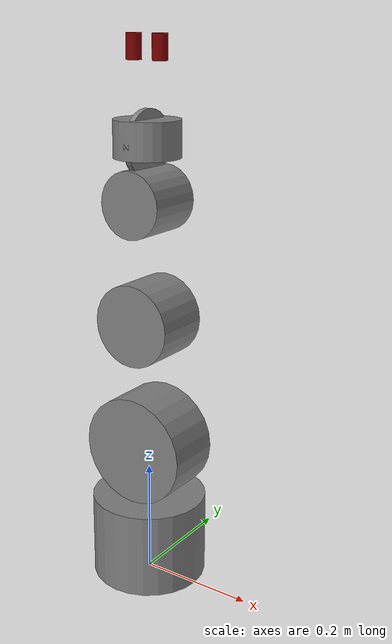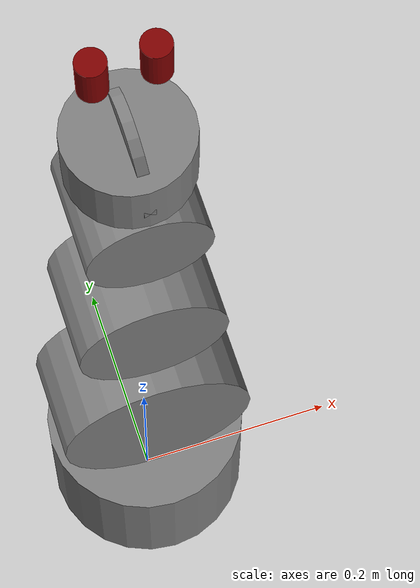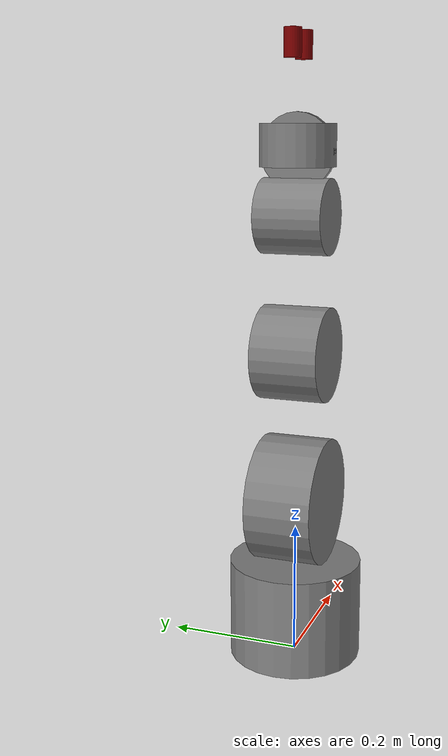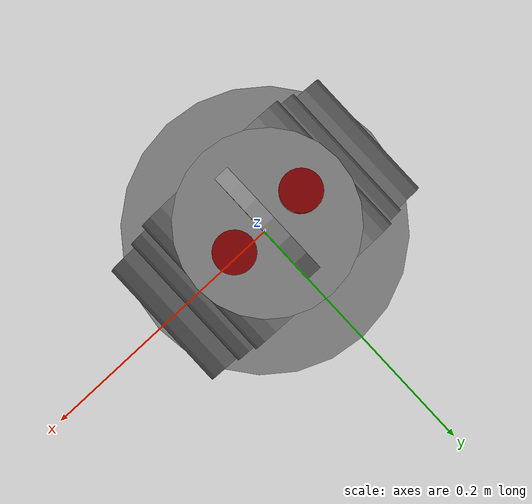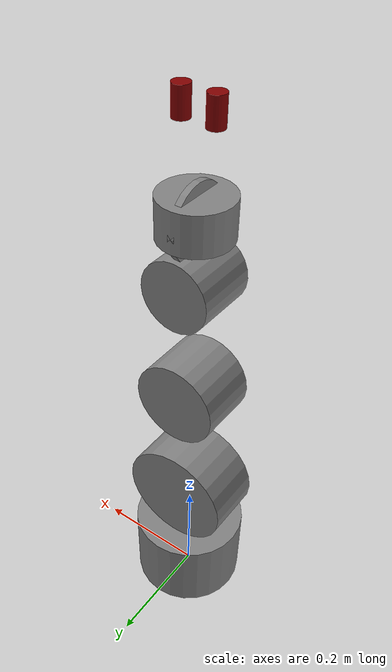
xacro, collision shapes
<?xml version="1.0"?>
<robot xmlns:xacro="http://www.ros.org/wiki/xacro" name="skyentific_robot">
    <xacro:arg name="initial_positions_file" default="initial_positions.yaml" />

    <!-- Import skyentific_robot urdf file -->
    <xacro:include filename="$(find my_robot_description)/urdf/skyentific_robot.urdf.xacro" />

    <!-- Import control_xacro -->
    <xacro:include filename="skyentific_robot.ros2_control.xacro" />

    <xacro:arg name="use_fake_system" default="false"/>

    <!-- include your robot + control macro files -->

    <xacro:if value="$(arg use_fake_system)">
    <xacro:skyentific_robot_ros2_control name="FakeSystem" initial_positions_file="$(arg initial_positions_file)"/>   <!-- mock -->
    </xacro:if>
    <xacro:unless value="$(arg use_fake_system)">
    <xacro:skyentific_robot_ros2_control name="Arm" initial_positions_file="$(arg initial_positions_file)"/>          <!-- REAL plugin -->
    </xacro:unless>

</robot>

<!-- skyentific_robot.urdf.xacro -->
<robot xmlns:xacro="http://www.ros.org/wiki/xacro" name="skyentific_robot">

    <!-- Include ros2_control Plugins -->
    <xacro:include filename="$(find my_robot_description)/urdf/skyentific_robot_ros2_control.xacro" />

    <!-- Useful XACRO Variables (Properties) -->
    <xacro:property name="PI" value="3.14159265359" />
    <material name="grey"> <color rgba="0.5 0.5 0.5 1.0"/></material>
    <material name="red">  <color rgba="0.5 0.0 0.0 1.0"/></material>

    <link name="base_link">
        <visual>
            <origin xyz="0 0 0" rpy="0 0 0"/>
            <geometry>
            <mesh filename="file://$(find my_robot_description)/meshes/base_z_ob.stl" scale="0.001 0.001 0.001"/>
            </geometry>
            <material name="grey" />
        </visual>
        <collision> <!-- cyclinder equivalent -->
            <origin xyz="0 0 0.075" rpy="0 0 0"/>
            <geometry> <cylinder radius="0.1" length="0.15"/></geometry>
        </collision>
    </link>
    <link name="link_1">
        <visual>
            <origin xyz="0 0 0" rpy="0 0 0"/>
            <geometry>
            <mesh filename="file://$(find my_robot_description)/meshes/link_1.stl" scale="0.001 0.001 0.001"/>
            </geometry>
            <material name="grey" />
        </visual>
        <collision>
            <origin xyz="0 0 0.150" rpy="1.57 0 0"/>
            <geometry> <cylinder radius="0.095" length="0.1"/> </geometry>
        </collision>
    </link>
    <link name="link_2">
    <visual>
        <origin xyz="0 0 0" rpy="0 0 0"/>
        <geometry>
        <mesh filename="file://$(find my_robot_description)/meshes/link_2.stl" scale="0.001 0.001 0.001"/>
        </geometry>
        <material name="grey"/>
    </visual>
    <collision>
        <origin xyz="0.225 0 0 " rpy="0 0 0"/>
        <geometry> <cylinder radius="0.07" length="0.1"/> </geometry>
    </collision>
    </link>
    <link name="link_3">
        <visual>
            <origin xyz="0 0 0" rpy="0 0 0"/>
            <geometry>
            <mesh filename="file://$(find my_robot_description)/meshes/link_3.stl" scale="0.001 0.001 0.001"/>
            </geometry>
            <material name="grey" />
        </visual>
        <collision>
            <origin xyz="0.2 0 0" rpy="0 0 0"/>
            <geometry> <cylinder radius="0.055" length="0.1"/> </geometry>
        </collision>
    </link>
    <link name="link_4">
        <visual>
            <origin xyz="0 0 0" rpy="0 0 0"/>
        <geometry>
            <mesh filename="file://$(find my_robot_description)/meshes/link_4.stl" scale="0.001 0.001 0.001"/>
        </geometry>
        <material name="grey" />
        </visual>
        <collision>
            <origin xyz="0.1 0 0" rpy="0 1.57 0"/>
            <geometry> <cylinder radius="0.055" length="0.06"/></geometry>
        </collision>
    </link>
    <link name="link_5">
        <visual>
            <origin xyz="0 0 0" rpy="0 0 0"/>
            <geometry>
            <mesh filename="file://$(find my_robot_description)/meshes/link_5_gripper.stl" scale="0.001 0.001 0.001"/>
            </geometry>
            <material name="grey" />
        </visual>
        <collision>
            <origin xyz="0 0 0" rpy="1.57 0 0"/>
            <geometry> <cylinder radius="0.055" length="0.01"/></geometry>
        </collision>
    </link>
    <link name="gripper_right">
        <visual>
            <origin xyz="0 0 0" rpy="0 0 0"/>
            <geometry>
            <mesh filename="file://$(find my_robot_description)/meshes/rightjaw.stl" scale="0.001 0.001 0.001"/>
            </geometry>
            <material name="red"/>
        </visual>
        <collision>
            <origin xyz="0.01 0.025 0.045" rpy="0 0 0"/>
            <geometry> <cylinder radius="0.0125" length="0.04"/></geometry>
        </collision>
    </link>
    <link name="gripper_left">
        <visual>
            <origin xyz="0 0 0" rpy="0 0 0"/>
            <geometry>
            <mesh filename="file://$(find my_robot_description)/meshes/leftjaw.stl" scale="0.001 0.001 0.001"/>
            </geometry>
            <material name="red"/>
        </visual>
        <collision>
            <origin xyz="0.01 -0.025 0.045" rpy="0 0 0"/>
            <geometry> <cylinder radius="0.0125" length="0.04"/></geometry>
        </collision>
    </link>
    <joint name="axis_1" type="revolute">
        <parent link="base_link"/>
        <child link="link_1"/>
        <origin xyz="0 0 0.0965" rpy="0 0 0"/>
        <axis xyz="0 0 1"/>
        <limit effort="1000.0" velocity="100.0" lower="-3.14" upper="3.14" />
    </joint>
    <joint name="axis_2" type="revolute">
        <parent link="link_1"/>
        <child link="link_2"/>
        <origin xyz="0 0 0.150" rpy="0 -1.57 1.57 "/>
        <axis xyz="0 0 1"/>
        <limit effort="1000.0" velocity="100.0" lower="-2.51" upper="2.51" />
    </joint>
    <joint name="axis_3" type="revolute">
        <parent link="link_2"/>
        <child link="link_3"/>
        <origin xyz="0.225 0 0" rpy="0 0 0"/>
        <axis xyz="0 0 1"/>
        <limit effort="1000.0" velocity="100.0" lower="-2.51" upper="2.51" />
    </joint>
        <joint name="axis_4" type="revolute">
        <parent link="link_3"/>
        <child link="link_4"/>
        <origin xyz="0.2 0 0" rpy="0 0 0"/>
        <axis xyz="0 0 1"/>
        <limit effort="1000.0" velocity="100.0" lower="-2.51" upper="2.51" />
    </joint>
        <joint name="axis_5" type="revolute">
        <parent link="link_4"/>
        <child link="link_5"/>
        <origin xyz="${0.0915+0.0} 0 0" rpy="0 1.57 0"/>
        <axis xyz="0 0 1"/>
        <limit effort="1000.0" velocity="100.0" lower="-2.51" upper="2.51" />
    </joint>
        <joint name="axis_6" type="prismatic">
        <parent link="link_5"/>
        <child link="gripper_right"/>
        <origin xyz="-0.01 0 0.1015" rpy="0 0 0"/>
        <axis xyz="0 1 0"/>
        <limit effort="1000.0" velocity="100.0" lower="-0.018" upper="0.02" />
    </joint>
        <joint name="axis_7" type="prismatic">
        <parent link="link_5"/>
        <child link="gripper_left"/>
        <origin xyz="-0.01 0 0.1015" rpy="0 0 0"/>
        <axis xyz="0 1 0"/>
        <mimic joint="axis_6" multiplier="-1"/>
        <limit effort="1000.0" velocity="100.0" lower="-0.018" upper="0.02" />
    </joint>
</robot>
